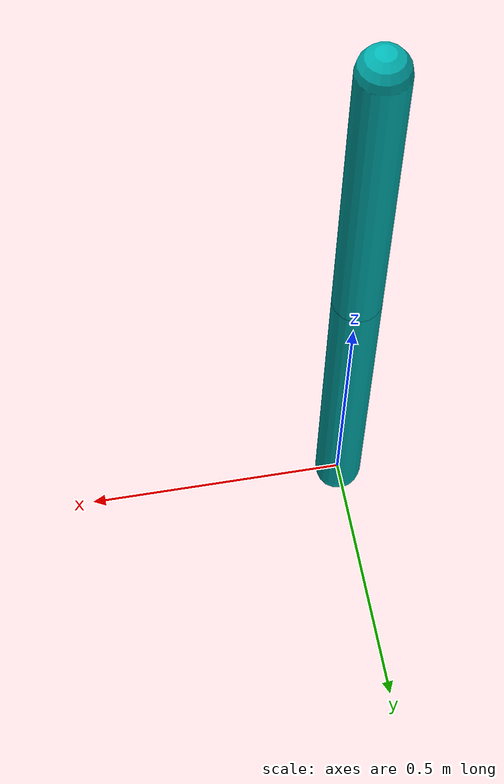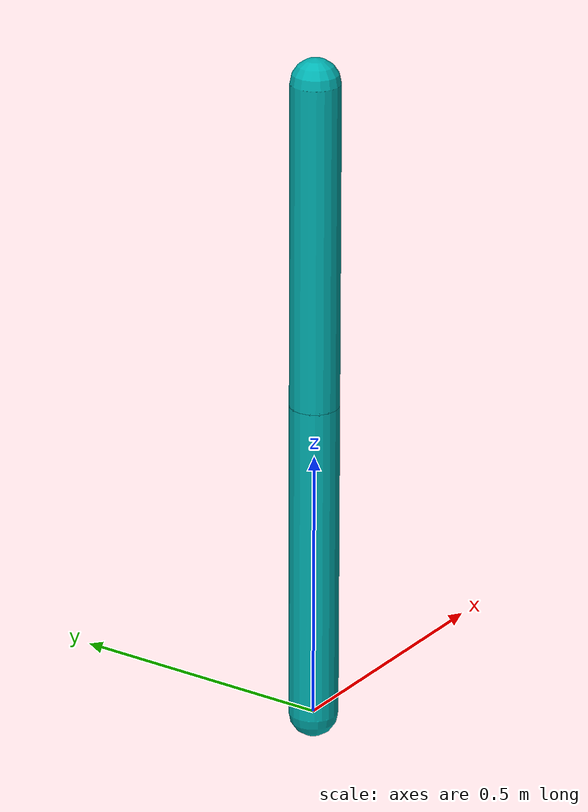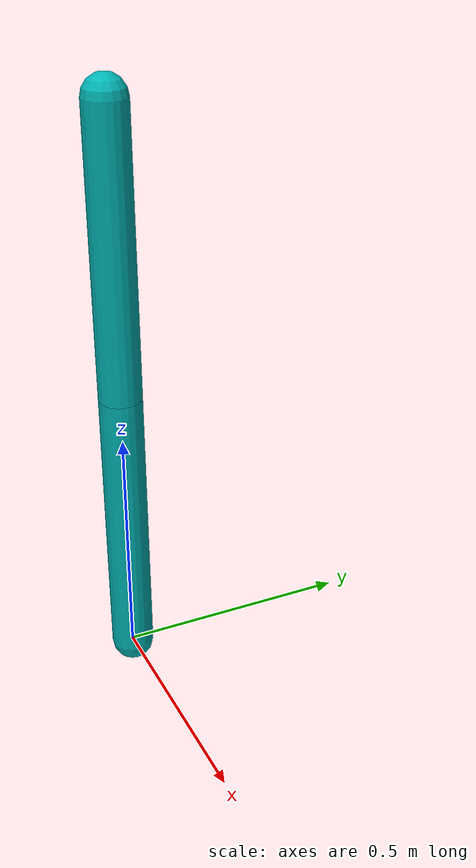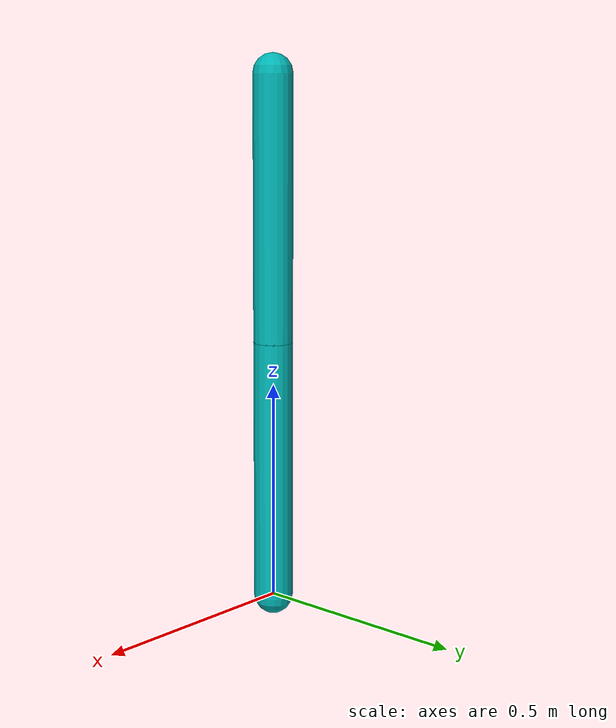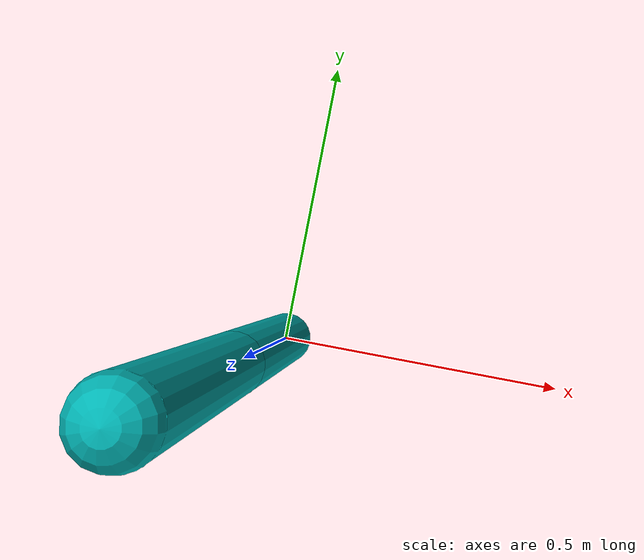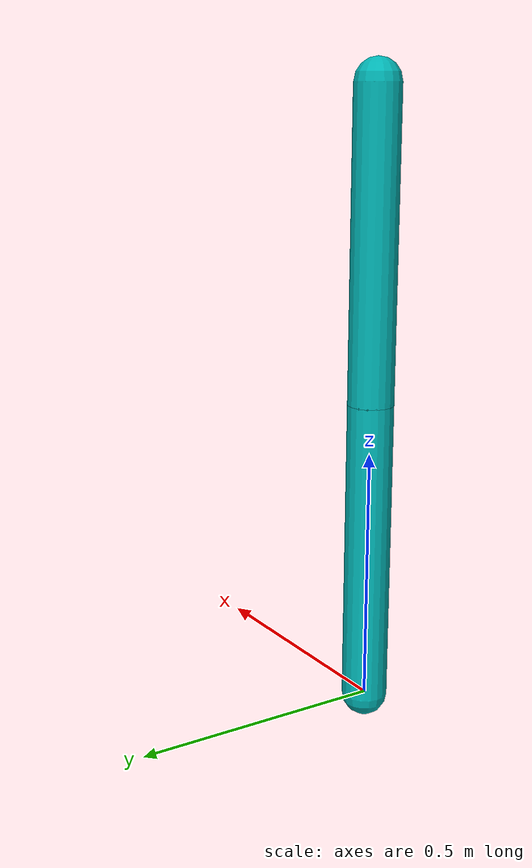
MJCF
<!-- Fixed-base double pendulum, both hinges actuated. Weak wrist is applied
     at construction by overriding the shoulder motor gear (see swingup_env.py). -->
<mujoco model="swingup_double_pendulum">
  <compiler inertiafromgeom="true"/>
  <option gravity="1e-5 0 -9.81" integrator="RK4" timestep="0.01"/>
  <default>
    <joint damping="0.05"/>
    <geom contype="0" friction="1 0.1 0.1" rgba="0.7 0.7 0 1"/>
  </default>
  <worldbody>
    <geom name="floor" pos="0 0 -3.0" rgba="0.8 0.9 0.8 1" size="40 40 40" type="plane"/>
    <body name="pole1" pos="0 0 0">
      <joint name="shoulder" type="hinge" axis="0 1 0" pos="0 0 0"/>
      <geom name="g_pole1" fromto="0 0 0 0 0 0.6" rgba="0 0.7 0.7 1" size="0.045" type="capsule"/>
      <body name="pole2" pos="0 0 0.6">
        <joint name="elbow" type="hinge" axis="0 1 0" pos="0 0 0"/>
        <geom name="g_pole2" fromto="0 0 0 0 0 0.6" rgba="0 0.7 0.7 1" size="0.045" type="capsule"/>
        <site name="tip" pos="0 0 0.6" size="0.02"/>
      </body>
    </body>
  </worldbody>
  <actuator>
    <motor joint="shoulder" name="m_shoulder" gear="100" ctrllimited="true" ctrlrange="-1 1"/>
    <motor joint="elbow" name="m_elbow" gear="100" ctrllimited="true" ctrlrange="-1 1"/>
  </actuator>
</mujoco>
